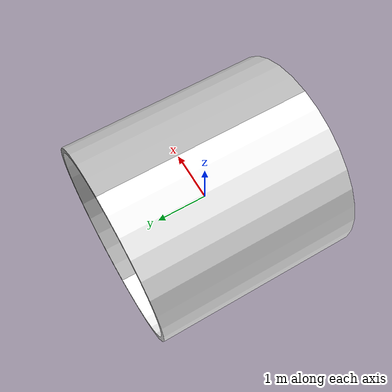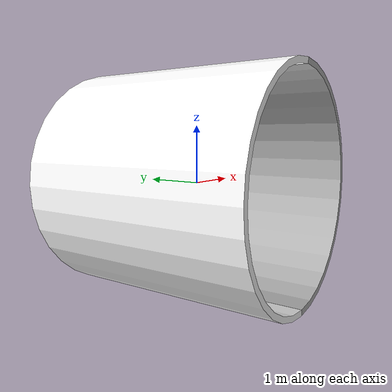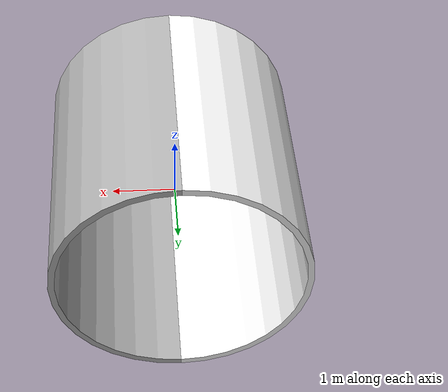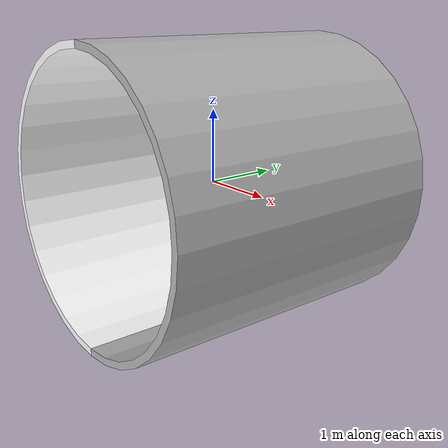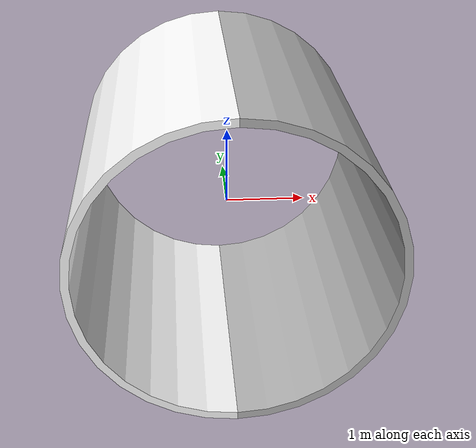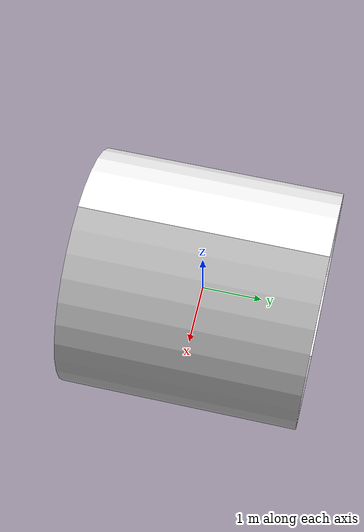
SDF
<?xml version='1.0'?>
<sdf version="1.6">
<model name="single_edge2">
  <static>true</static>
  <link name="link">
    <visual name="visual1">
      <pose>0 0 0 0 0 0</pose>
      <geometry>
        <mesh>
          <uri>model://single_edge2/meshes/hollow_cylinder_left_half.dae</uri>
        </mesh>
      </geometry>
      <material>
        <ambient>1.0 1.0 1.0 1</ambient>
        <diffuse>1.0 1.0 1.0 1</diffuse>
        <specular>0 0 0 1</specular>
        <emissive>0 0 0 1</emissive>
      </material>
    </visual>
    <visual name="visual2">
      <pose>0 0 0 0 0 0</pose>
      <geometry>
        <mesh>
          <uri>model://single_edge2/meshes/hollow_cylinder_right_half.dae</uri>
        </mesh>
      </geometry>
      <material>
        <ambient>0.3 0.3 0.3 1</ambient>
        <diffuse>0.7 0.7 0.7 1</diffuse>
        <specular>0 0 0 1</specular>
        <emissive>0 0 0 1</emissive>
      </material>
    </visual>
  </link>
</model>
</sdf>
